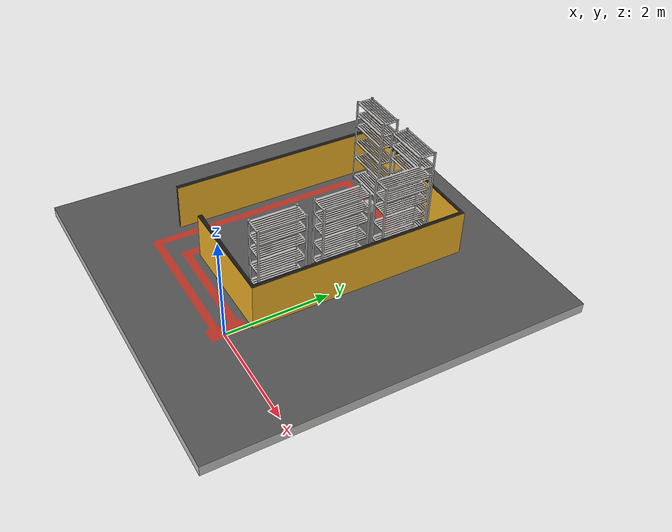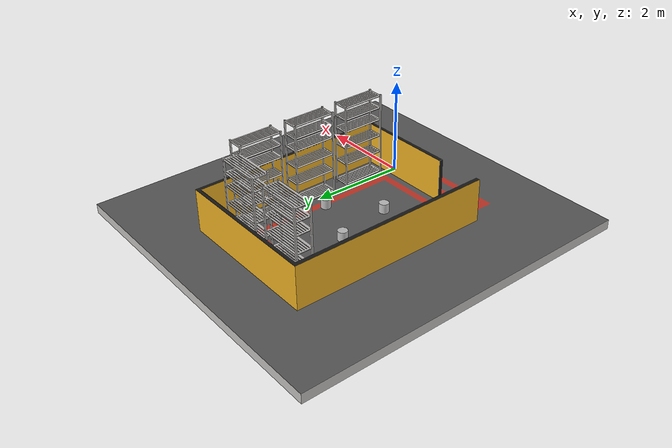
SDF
<sdf version='1.10'>
  <world name='default'>
    <plugin name='gz::sim::systems::Physics' filename='gz-sim-physics-system'/>
    <plugin name='gz::sim::systems::UserCommands' filename='gz-sim-user-commands-system'/>
    <plugin name='gz::sim::systems::SceneBroadcaster' filename='gz-sim-scene-broadcaster-system'/>
    <plugin name='gz::sim::systems::Sensors' filename='gz-sim-sensors-system'>
      <render_engine>ogre2</render_engine>
    </plugin>
    <plugin name='gz::sim::systems::Imu' filename='gz-sim-imu-system'/>
    <scene>
      <ambient>0.5 0.5 0.5 1</ambient>
      <background>0.5 0.5 0.5 1</background>
      <shadows>true</shadows>
    </scene>
    <gravity>0 0 -9.8000000000000007</gravity>
    <magnetic_field>5.5644999999999998e-06 2.2875799999999999e-05 -4.2388400000000002e-05</magnetic_field>
    <atmosphere type='adiabatic'/>
    <physics type='ode'>
      <max_step_size>0.001</max_step_size>
      <real_time_factor>1</real_time_factor>
      <real_time_update_rate>1000</real_time_update_rate>
    </physics>
    <model name='worldEternal'>
      <static>true</static>
      <link name='arena'>
        <collision name='arena_collision_collision'>
          <pose>-0.97499999999999998 2.0750000000000002 0 -1.5900000000000001 0 0</pose>
          <geometry>
            <mesh>
              <scale>0.001 0.001 0.001</scale>
              <uri>file:///home/ysiddhanth/ros2_ws/src/eternal_gazebo/worlds/meshes/arena.dae</uri>
            </mesh>
          </geometry>
        </collision>
        <visual name='arena_visual_visual'>
          <pose>-0.97499999999999998 2.0750000000000002 0 -1.5900000000000001 0 0</pose>
          <geometry>
            <mesh>
              <scale>0.001 0.001 0.001</scale>
              <uri>file:///home/ysiddhanth/ros2_ws/src/eternal_gazebo/worlds/meshes/arena.dae</uri>
            </mesh>
          </geometry>
        </visual>
        <pose>0 0 0 0 0 0</pose>
        <inertial>
          <pose>0 0 0 0 0 0</pose>
          <mass>1</mass>
          <inertia>
            <ixx>1</ixx>
            <ixy>0</ixy>
            <ixz>0</ixz>
            <iyy>1</iyy>
            <iyz>0</iyz>
            <izz>1</izz>
          </inertia>
        </inertial>
        <enable_wind>false</enable_wind>
      </link>
      <pose>0 0 0 0 0 0</pose>
      <self_collide>false</self_collide>
    </model>
    <model name='cylinder_20cm'>
      <link name='base_link'>
        <inertial>
          <pose>0 0 0.10000000000000001 0 0 0</pose>
          <mass>1</mass>
          <inertia>
            <ixx>0.002</ixx>
            <ixy>0</ixy>
            <ixz>0</ixz>
            <iyy>0.002</iyy>
            <iyz>0</iyz>
            <izz>0.0030000000000000001</izz>
          </inertia>
        </inertial>
        <collision name='base_link_collision'>
          <pose>0 0 0.10000000000000001 0 0 0</pose>
          <geometry>
            <cylinder>
              <length>0.20000000000000001</length>
              <radius>0.10000000000000001</radius>
            </cylinder>
          </geometry>
          <surface>
            <friction>
              <ode/>
            </friction>
            <bounce/>
            <contact/>
          </surface>
        </collision>
        <visual name='base_link_visual'>
          <pose>0 0 0.10000000000000001 0 0 0</pose>
          <geometry>
            <cylinder>
              <length>0.20000000000000001</length>
              <radius>0.10000000000000001</radius>
            </cylinder>
          </geometry>
          <material>
            <diffuse>0.75000006 0.75000006 0.75000006 1</diffuse>
            <ambient>0.75000006 0.75000006 0.75000006 1</ambient>
          </material>
        </visual>
        <pose>0 0 0 0 0 0</pose>
        <enable_wind>false</enable_wind>
      </link>
      <pose>-1.6516019336692036 2.7264985738957264 0.18752387569680939 0 0 0</pose>
      <static>false</static>
      <self_collide>false</self_collide>
    </model>
    <model name='cylinder_20cm_0'>
      <link name='base_link'>
        <inertial>
          <pose>0 0 0.10000000000000001 0 0 0</pose>
          <mass>1</mass>
          <inertia>
            <ixx>0.002</ixx>
            <ixy>0</ixy>
            <ixz>0</ixz>
            <iyy>0.002</iyy>
            <iyz>0</iyz>
            <izz>0.0030000000000000001</izz>
          </inertia>
        </inertial>
        <collision name='base_link_collision'>
          <pose>0 0 0.10000000000000001 0 0 0</pose>
          <geometry>
            <cylinder>
              <length>0.20000000000000001</length>
              <radius>0.10000000000000001</radius>
            </cylinder>
          </geometry>
          <surface>
            <friction>
              <ode/>
            </friction>
            <bounce/>
            <contact/>
          </surface>
        </collision>
        <visual name='base_link_visual'>
          <pose>0 0 0.10000000000000001 0 0 0</pose>
          <geometry>
            <cylinder>
              <length>0.20000000000000001</length>
              <radius>0.10000000000000001</radius>
            </cylinder>
          </geometry>
          <material>
            <diffuse>0.75000006 0.75000006 0.75000006 1</diffuse>
            <ambient>0.75000006 0.75000006 0.75000006 1</ambient>
          </material>
        </visual>
        <pose>0 0 0 0 0 0</pose>
        <enable_wind>false</enable_wind>
      </link>
      <pose>-1.4139100313186646 1.5248942375183105 0.21105800569057465 0 0 0</pose>
      <static>false</static>
      <self_collide>false</self_collide>
    </model>
    <model name='cylinder_20cm_1'>
      <link name='base_link'>
        <inertial>
          <pose>0 0 0.10000000000000001 0 0 0</pose>
          <mass>1</mass>
          <inertia>
            <ixx>0.002</ixx>
            <ixy>0</ixy>
            <ixz>0</ixz>
            <iyy>0.002</iyy>
            <iyz>0</iyz>
            <izz>0.0030000000000000001</izz>
          </inertia>
        </inertial>
        <collision name='base_link_collision'>
          <pose>0 0 0.10000000000000001 0 0 0</pose>
          <geometry>
            <cylinder>
              <length>0.20000000000000001</length>
              <radius>0.10000000000000001</radius>
            </cylinder>
          </geometry>
          <surface>
            <friction>
              <ode/>
            </friction>
            <bounce/>
            <contact/>
          </surface>
        </collision>
        <visual name='base_link_visual'>
          <pose>0 0 0.10000000000000001 0 0 0</pose>
          <geometry>
            <cylinder>
              <length>0.20000000000000001</length>
              <radius>0.10000000000000001</radius>
            </cylinder>
          </geometry>
          <material>
            <diffuse>0.75000006 0.75000006 0.75000006 1</diffuse>
            <ambient>0.75000006 0.75000006 0.75000006 1</ambient>
          </material>
        </visual>
        <pose>0 0 0 0 0 0</pose>
        <enable_wind>false</enable_wind>
      </link>
      <pose>-0.56429398059844971 2.2794778347015381 0.19380900263786316 0 0 0</pose>
      <static>false</static>
      <self_collide>false</self_collide>
    </model>
    <model name='cylinder_20cm_2'>
      <link name='base_link'>
        <inertial>
          <pose>0 0 0.10000000000000001 0 0 0</pose>
          <mass>1</mass>
          <inertia>
            <ixx>0.002</ixx>
            <ixy>0</ixy>
            <ixz>0</ixz>
            <iyy>0.002</iyy>
            <iyz>0</iyz>
            <izz>0.0030000000000000001</izz>
          </inertia>
        </inertial>
        <collision name='base_link_collision'>
          <pose>0 0 0.10000000000000001 0 0 0</pose>
          <geometry>
            <cylinder>
              <length>0.20000000000000001</length>
              <radius>0.10000000000000001</radius>
            </cylinder>
          </geometry>
          <surface>
            <friction>
              <ode/>
            </friction>
            <bounce/>
            <contact/>
          </surface>
        </collision>
        <visual name='base_link_visual'>
          <pose>0 0 0.10000000000000001 0 0 0</pose>
          <geometry>
            <cylinder>
              <length>0.20000000000000001</length>
              <radius>0.10000000000000001</radius>
            </cylinder>
          </geometry>
          <material>
            <diffuse>0.75000006 0.75000006 0.75000006 1</diffuse>
            <ambient>0.75000006 0.75000006 0.75000006 1</ambient>
          </material>
        </visual>
        <pose>0 0 0 0 0 0</pose>
        <enable_wind>false</enable_wind>
      </link>
      <pose>-1.5166599750518799 3.7759954929351807 0.16650800406932831 0 0 0</pose>
      <static>false</static>
      <self_collide>false</self_collide>
    </model>
    <light name='sun' type='directional'>
      <pose>1 0 5 0 0 0</pose>
      <cast_shadows>false</cast_shadows>
      <intensity>1</intensity>
      <direction>-0.5 0.10000000000000001 -0.90000000000000002</direction>
      <diffuse>1 1 1 1</diffuse>
      <specular>0 0 0 1</specular>
      <attenuation>
        <range>1000</range>
        <linear>0</linear>
        <constant>1</constant>
        <quadratic>0</quadratic>
      </attenuation>
      <spot>
        <inner_angle>0</inner_angle>
        <outer_angle>0</outer_angle>
        <falloff>0</falloff>
      </spot>
    </light>
  </world>
</sdf>
